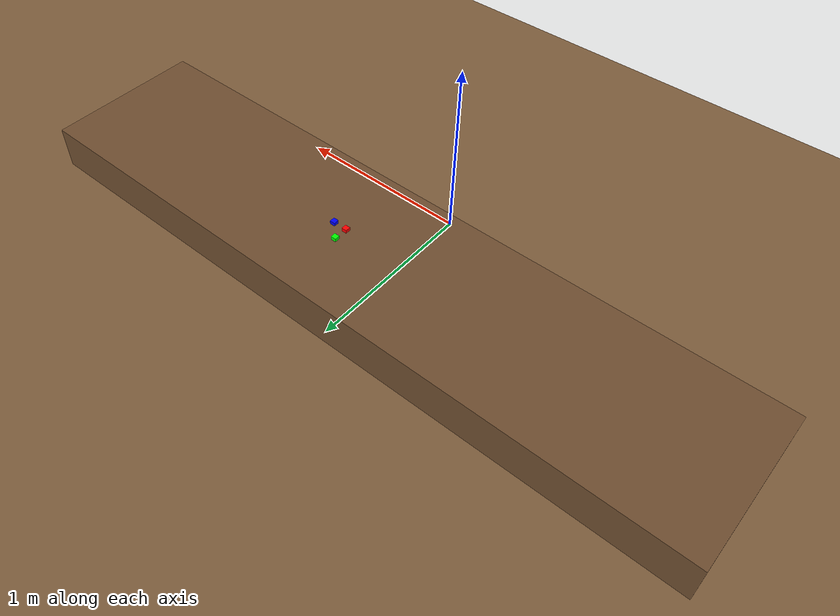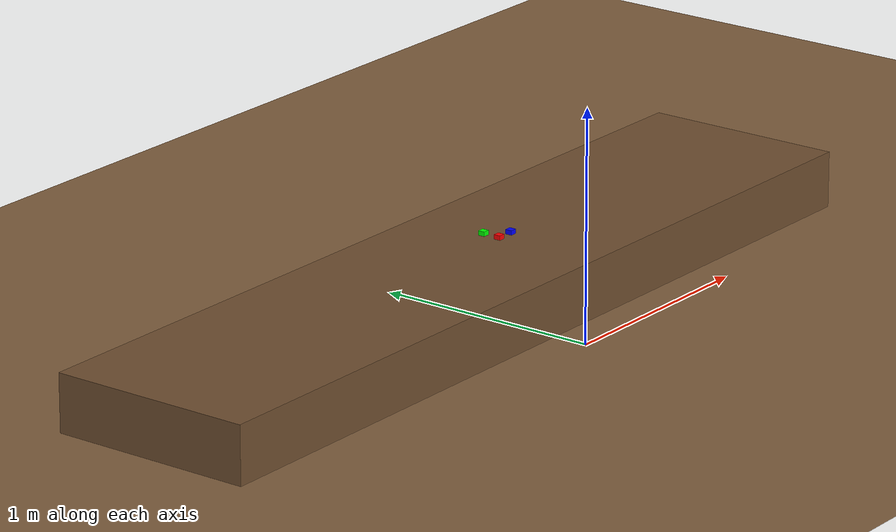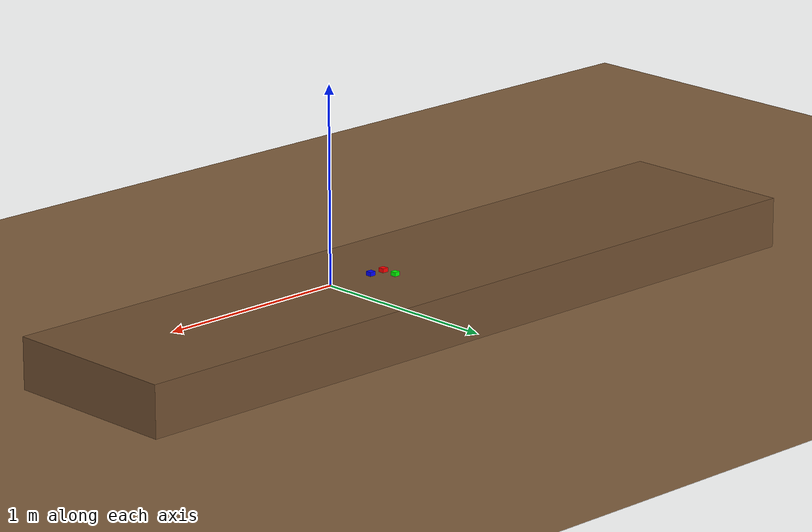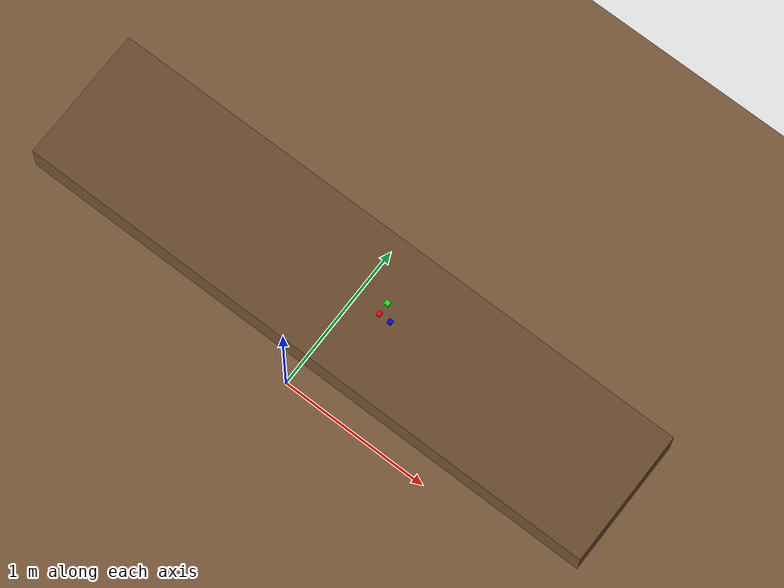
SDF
<sdf version="1.9">
 <world name="robot_calib">
  <physics name="1ms" type="ignored">
   <max_step_size>0.001</max_step_size>
   <real_time_factor>1.0</real_time_factor>
  </physics>
  <plugin filename="ignition-gazebo-physics-system" name="ignition::gazebo::systems::Physics"/>
  <plugin filename="ignition-gazebo-sensors-system" name="ignition::gazebo::systems::Sensors">
   <render_engine>ogre2</render_engine>
  </plugin>
  <plugin filename="ignition-gazebo-scene-broadcaster-system" name="ignition::gazebo::systems::SceneBroadcaster"/>
  <light type="directional" name="sun">
   <cast_shadows>false</cast_shadows>
   <pose>0 0 10 0 0 0</pose>
   <diffuse>1 1 1 1</diffuse>
   <specular>0.2 0.2 0.2 1</specular>
   <direction>0 0 -1</direction>
  </light>
  <model name="furrow_floor">
   <static>true</static>
   <link name="link">
    <collision name="c">
     <geometry><plane><normal>0 0 1</normal><size>100 100</size></plane></geometry>
     <surface><friction><ode><mu>1.0</mu><mu2>1.0</mu2></ode></friction></surface>
    </collision>
    <visual name="v">
     <geometry><plane><normal>0 0 1</normal><size>100 100</size></plane></geometry>
     <material><ambient>0.30 0.22 0.14 1</ambient><diffuse>0.50 0.37 0.24 1</diffuse></material>
    </visual>
   </link>
  </model>
  <model name="bed">
   <static>true</static>
   <pose>0 0.600 0.125 0 0 0</pose>
   <link name="link">
    <collision name="c"><geometry><box><size>4.00 0.90 0.25</size></box></geometry></collision>
    <visual name="v">
     <geometry><box><size>4.00 0.90 0.25</size></box></geometry>
     <material><ambient>0.26 0.18 0.11 1</ambient><diffuse>0.44 0.31 0.19 1</diffuse></material>
    </visual>
   </link>
  </model>
  <model name="mark_c">
   <static>true</static>
   <pose>0.22 0.60 0.27 0 0 0</pose>
   <link name="l">
    <visual name="v">
     <geometry><box><size>0.03 0.03 0.02</size></box></geometry>
     <material><ambient>1 0 0 1</ambient><diffuse>1 0 0 1</diffuse><emissive>1 0 0 1</emissive></material>
    </visual>
   </link>
  </model>
  <model name="mark_x">
   <static>true</static>
   <pose>0.30 0.60 0.27 0 0 0</pose>
   <link name="l">
    <visual name="v">
     <geometry><box><size>0.03 0.03 0.02</size></box></geometry>
     <material><ambient>0 0 1 1</ambient><diffuse>0 0 1 1</diffuse><emissive>0 0 1 1</emissive></material>
    </visual>
   </link>
  </model>
  <model name="mark_y">
   <static>true</static>
   <pose>0.22 0.68 0.27 0 0 0</pose>
   <link name="l">
    <visual name="v">
     <geometry><box><size>0.03 0.03 0.02</size></box></geometry>
     <material><ambient>0 1 0 1</ambient><diffuse>0 1 0 1</diffuse><emissive>0 1 0 1</emissive></material>
    </visual>
   </link>
  </model>
 </world>
</sdf>
